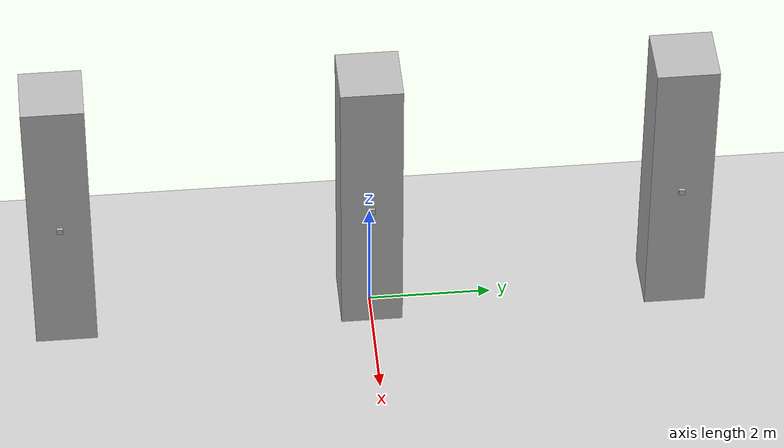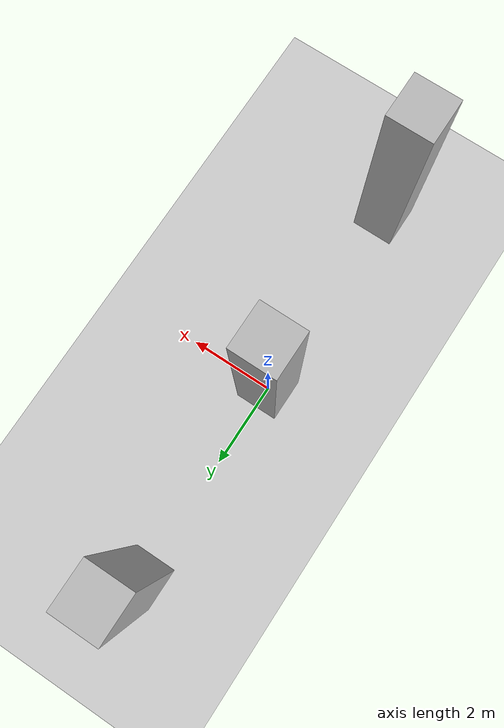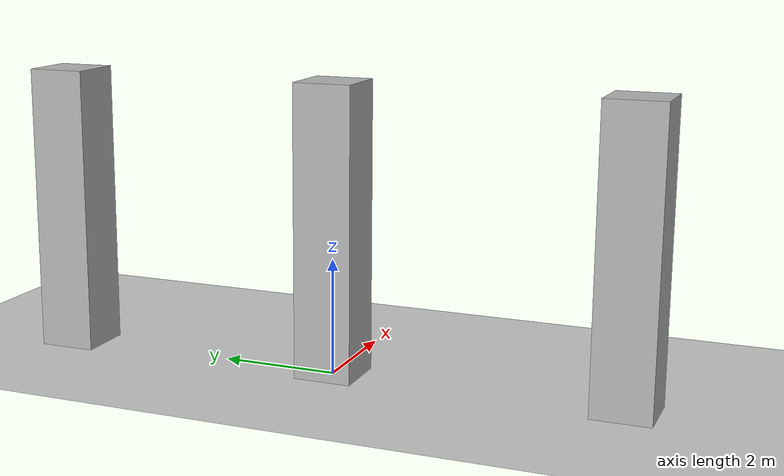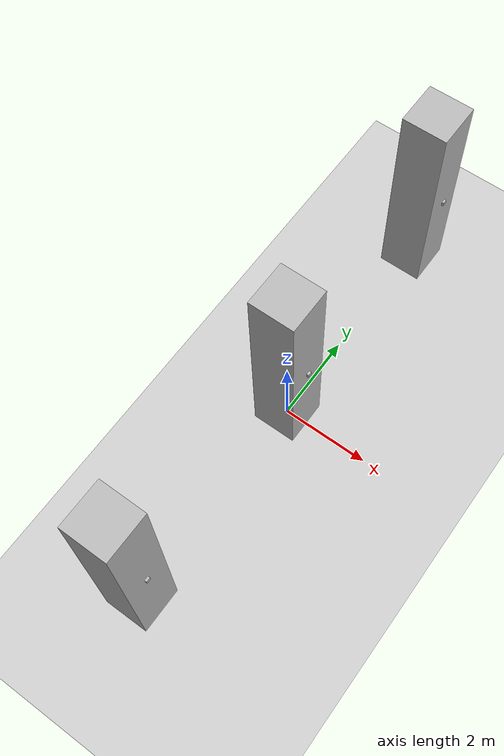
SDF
<sdf version="1.6">
 <world name="default">
  <plugin name="ros_link_attacher_plugin" filename="libgazebo_ros_link_attacher.so"/>
  <light name="sun1" type="directional">
   <pose>0 0 10 0 0 0</pose>
   <diffuse>0.8 0.8 0.8 1</diffuse>
   <specular>0.2 0.2 0.2 1</specular>
   <attenuation>
    <range>1000</range>
    <constant>0.9</constant>
    <linear>0.01</linear>
    <quadratic>0.001</quadratic>
   </attenuation>
   <direction>-0.5 0.1 -0.9</direction>
  </light>
  <light type="directional" name="sun2">
   <pose>0 0 10 0 0 0</pose>
   <diffuse>0.8 0.8 0.8 1</diffuse>
   <specular>0.1 0.1 0.1 1</specular>
   <attenuation>
    <range>1000</range>
    <constant>0.9</constant>
    <linear>0.01</linear>
    <quadratic>0.001</quadratic>
   </attenuation>
   <direction>-0.5 0.5 -1.0</direction>
  </light>
  <light type="directional" name="sun3">
   <pose>0 0 10 0 0 0</pose>
   <diffuse>0.8 0.8 0.8 1</diffuse>
   <specular>0.1 0.1 0.1 1</specular>
   <attenuation>
    <range>1000</range>
    <constant>0.9</constant>
    <linear>0.01</linear>
    <quadratic>0.001</quadratic>
   </attenuation>
   <direction>-0.5 0.5 -1.0</direction>
  </light>
  <light type="directional" name="sun4">
   <pose>0 0 10 0 0 0</pose>
   <diffuse>0.8 0.8 0.8 1</diffuse>
   <specular>0.2 0.2 0.2 1</specular>
   <attenuation>
    <range>1000</range>
    <constant>0.9</constant>
    <linear>0.01</linear>
    <quadratic>0.001</quadratic>
   </attenuation>
   <direction>-0.5 0.1 -0.9</direction>
  </light>
  <model name="ground_plane">
   <static>1</static>
   <link name="link">
    <collision name="collision">
     <geometry><plane><normal>0 0 1</normal><size>1000 1000</size></plane></geometry>
     <surface><friction><ode><mu>100</mu><mu2>50</mu2></ode></friction></surface>
    </collision>
    <visual name="visual">
     <cast_shadows>0</cast_shadows>
     <geometry><plane><normal>0 0 1</normal><size>100 100</size></plane></geometry>
     <material>
      <script><uri>file://media/materials/scripts/gazebo.material</uri><name>Gazebo/Grey</name></script>
     </material>
    </visual>
   </link>
  </model>
  <gravity>0 0 -9.8</gravity>
  <magnetic_field>6e-06 2.3e-05 -4.2e-05</magnetic_field>
  <atmosphere type="adiabatic"/>
  <physics name="default_physics" default="0" type="ode">
   <max_step_size>0.001</max_step_size>
   <real_time_factor>1</real_time_factor>
   <real_time_update_rate>1000</real_time_update_rate>
  </physics>
  <scene><ambient>0.4 0.4 0.4 1</ambient><background>0.7 0.7 0.7 1</background><shadows>1</shadows></scene>
  <spherical_coordinates>
   <surface_model>EARTH_WGS84</surface_model>
   <latitude_deg>0</latitude_deg>
   <longitude_deg>0</longitude_deg>
   <elevation>0</elevation>
   <heading_deg>0</heading_deg>
  </spherical_coordinates>
  <model name="Camera_Beam">
   <pose>0 0 2.5 0 0 0</pose>
   <static>true</static>
   <link name="link">
    <inertial>
     <mass>1.0</mass>
     <inertia><ixx>0.083</ixx><ixy>0.0</ixy><ixz>0.0</ixz><iyy>0.083</iyy><iyz>0.0</iyz><izz>0.083</izz></inertia>
    </inertial>
    <collision name="collision"><geometry><box><size>1 1 5</size></box></geometry></collision>
    <visual name="visual"><geometry><box><size>1 1 5</size></box></geometry></visual>
   </link>
  </model>
  <model name="camera_0">
   <pose>0.5 0 2.5 -0 0 0</pose>
   <static>true</static>
   <link name="link">
    <gravity>0</gravity>
    <collision name="collision"><geometry><box><size>0.1 0.1 0.1</size></box></geometry></collision>
    <visual name="visual"><geometry><box><size>0.1 0.1 0.1</size></box></geometry></visual>
    <sensor name="camera" type="camera">
     <camera name="__default__">
      <horizontal_fov>1.047</horizontal_fov>
      <image><width>1920</width><height>1080</height></image>
      <clip><near>0.1</near><far>100</far></clip>
     </camera>
     <plugin name="camera_controller" filename="libgazebo_ros_camera.so">
      <alwaysOn>1</alwaysOn>
      <updateRate>0.0</updateRate>
      <cameraName>camera_0</cameraName>
      <imageTopicName>image_raw</imageTopicName>
      <cameraInfoTopicName>camera_info</cameraInfoTopicName>
      <frameName>camera_0</frameName>
      <hackBaseline>0.07</hackBaseline>
      <distortionK1>0.0</distortionK1>
      <distortionK2>0.0</distortionK2>
      <distortionK3>0.0</distortionK3>
      <distortionT1>0.0</distortionT1>
      <distortionT2>0.0</distortionT2>
     </plugin>
     <always_on>1</always_on>
     <update_rate>30</update_rate>
     <visualize>1</visualize>
    </sensor>
    <inertial>
     <inertia><ixx>1</ixx><ixy>0</ixy><ixz>0</ixz><iyy>1</iyy><iyz>0</iyz><izz>1</izz></inertia>
     <mass>1</mass>
    </inertial>
   </link>
  </model>
  <model name="Camera_Beam1">
   <pose>0 -5 2.5 0 0 0</pose>
   <static>true</static>
   <link name="link">
    <inertial>
     <mass>1.0</mass>
     <inertia><ixx>0.083</ixx><ixy>0.0</ixy><ixz>0.0</ixz><iyy>0.083</iyy><iyz>0.0</iyz><izz>0.083</izz></inertia>
    </inertial>
    <collision name="collision"><geometry><box><size>1 1 5</size></box></geometry></collision>
    <visual name="visual"><geometry><box><size>1 1 5</size></box></geometry></visual>
   </link>
  </model>
  <model name="camera_1">
   <pose>0.5 -5 2.5 -0 0 0</pose>
   <static>true</static>
   <link name="link">
    <gravity>0</gravity>
    <collision name="collision"><geometry><box><size>0.1 0.1 0.1</size></box></geometry></collision>
    <visual name="visual"><geometry><box><size>0.1 0.1 0.1</size></box></geometry></visual>
    <sensor name="camera" type="camera">
     <camera name="__default__">
      <horizontal_fov>1.047</horizontal_fov>
      <image><width>1920</width><height>1080</height></image>
      <clip><near>0.1</near><far>100</far></clip>
     </camera>
     <plugin name="camera_controller" filename="libgazebo_ros_camera.so">
      <alwaysOn>1</alwaysOn>
      <updateRate>0.0</updateRate>
      <cameraName>camera_1</cameraName>
      <imageTopicName>image_raw</imageTopicName>
      <cameraInfoTopicName>camera_info</cameraInfoTopicName>
      <frameName>camera_1</frameName>
      <hackBaseline>0.07</hackBaseline>
      <distortionK1>0.0</distortionK1>
      <distortionK2>0.0</distortionK2>
      <distortionK3>0.0</distortionK3>
      <distortionT1>0.0</distortionT1>
      <distortionT2>0.0</distortionT2>
     </plugin>
     <always_on>1</always_on>
     <update_rate>30</update_rate>
     <visualize>1</visualize>
    </sensor>
    <inertial>
     <inertia><ixx>1</ixx><ixy>0</ixy><ixz>0</ixz><iyy>1</iyy><iyz>0</iyz><izz>1</izz></inertia>
     <mass>1</mass>
    </inertial>
   </link>
  </model>
  <model name="Camera_Beam2">
   <pose>0 5 2.5 0 0 0</pose>
   <static>true</static>
   <link name="link">
    <inertial>
     <mass>1.0</mass>
     <inertia><ixx>0.083</ixx><ixy>0.0</ixy><ixz>0.0</ixz><iyy>0.083</iyy><iyz>0.0</iyz><izz>0.083</izz></inertia>
    </inertial>
    <collision name="collision"><geometry><box><size>1 1 5</size></box></geometry></collision>
    <visual name="visual"><geometry><box><size>1 1 5</size></box></geometry></visual>
   </link>
  </model>
  <model name="camera_2">
   <pose>0.5 5 2.5 -0 0 0</pose>
   <static>true</static>
   <link name="link">
    <gravity>0</gravity>
    <collision name="collision"><geometry><box><size>0.1 0.1 0.1</size></box></geometry></collision>
    <visual name="visual"><geometry><box><size>0.1 0.1 0.1</size></box></geometry></visual>
    <sensor name="camera" type="camera">
     <camera name="__default__">
      <horizontal_fov>1.047</horizontal_fov>
      <image><width>1920</width><height>1080</height></image>
      <clip><near>0.1</near><far>100</far></clip>
     </camera>
     <plugin name="camera_controller" filename="libgazebo_ros_camera.so">
      <alwaysOn>1</alwaysOn>
      <updateRate>0.0</updateRate>
      <cameraName>camera_2</cameraName>
      <imageTopicName>image_raw</imageTopicName>
      <cameraInfoTopicName>camera_info</cameraInfoTopicName>
      <frameName>camera_2</frameName>
      <hackBaseline>0.07</hackBaseline>
      <distortionK1>0.0</distortionK1>
      <distortionK2>0.0</distortionK2>
      <distortionK3>0.0</distortionK3>
      <distortionT1>0.0</distortionT1>
      <distortionT2>0.0</distortionT2>
     </plugin>
     <always_on>1</always_on>
     <update_rate>30</update_rate>
     <visualize>1</visualize>
    </sensor>
    <inertial>
     <inertia><ixx>1</ixx><ixy>0</ixy><ixz>0</ixz><iyy>1</iyy><iyz>0</iyz><izz>1</izz></inertia>
     <mass>1</mass>
    </inertial>
   </link>
  </model>
 </world>
</sdf>
